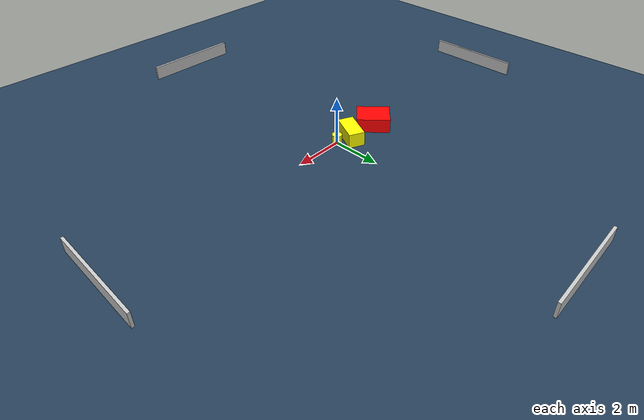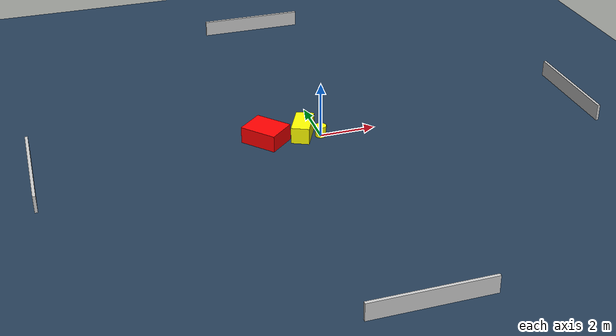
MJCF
<?xml version="1.0" ?>
<mujoco model="generated_environment">
  <option timestep="0.01" integrator="RK4" cone="elliptic"/>
  <default>
    <geom density="1"/>
  </default>
  <asset>
    <texture builtin="gradient" height="3072" name="skybox" rgb1="0.3 0.5 0.7" rgb2="0 0 0" type="skybox" width="512"/>
    <texture builtin="checker" height="300" name="groundplane" rgb1="0.2 0.3 0.4" rgb2="0.1 0.2 0.3" type="2d" width="300"/>
    <material name="groundplane" reflectance="0.2" texrepeat="5 5" texture="groundplane"/>
  </asset>
  <worldbody>
    <light dir="0 0 -1" directional="true" pos="0 0 1.5"/>
    <geom condim="3" friction="0.5 0.005 0.001" material="groundplane" name="floor" pos="0 0 0" size="0 0 0.05" type="plane"/>
    <body name="walls">
      <geom name="wall_1" condim="4" pos="-10.0 0.0 0.3" rgba="0.800000011920929 0.800000011920929 0.800000011920929 1.0" size="0.05 2.0 0.3" type="box"/>
      <geom name="wall_2" condim="4" pos="10.0 0.0 0.3" rgba="0.800000011920929 0.800000011920929 0.800000011920929 1.0" size="0.05 2.0 0.3" type="box"/>
      <geom name="wall_3" condim="4" pos="0.0 -10.0 0.3" rgba="0.800000011920929 0.800000011920929 0.800000011920929 1.0" size="2.0 0.05 0.3" type="box"/>
      <geom name="wall_4" condim="4" pos="0.0 10.0 0.3" rgba="0.800000011920929 0.800000011920929 0.800000011920929 1.0" size="2.0 0.05 0.3" type="box"/>
    </body>
    <body name="robot">
      <joint name="joint_x" type="slide" pos="0 0 0" axis="1 0 0"/>
      <joint name="joint_y" type="slide" pos="0 0 0" axis="0 1 0"/>
      <geom name="robot" type="cylinder" pos="0.0 0.0 0.2" size="0.2 0.2 0.0" mass="5.0" friction="1.0 0.005 0.0001" condim="4" rgba="1.0 1.0 0.0 1.0"/>
    </body>
    <body name="obstacle_1_movable">
      <geom name="obstacle_1_movable" condim="4" pos="-0.6107366328627418 0.1931963792428023 0.3" euler="0 0 154.38029544691656" friction="0.0 0.005 0.001" rgba="1.0 1.0 0.0 1.0" size="0.32548091622722164 0.6172302563822776 0.3" type="box" mass="0.1"/>
      <joint type="free"/>
    </body>
    <body name="obstacle_2_static">
      <geom name="obstacle_2_static" condim="4" pos="-1.9585206818517618 0.2098031137793892 0.3" euler="0 0 41.80226396946536" friction="0.0 0.005 0.001" rgba="1.0 0.0 0.0 1.0" size="0.533535660402586 0.6815487507434241 0.3" type="box"/>
    </body>
  </worldbody>
  <actuator>
    <motor name="actuator_x" joint="joint_x" gear="1" ctrlrange="-1 1"/>
    <motor name="actuator_y" joint="joint_y" gear="1" ctrlrange="-1 1"/>
  </actuator>
</mujoco>
